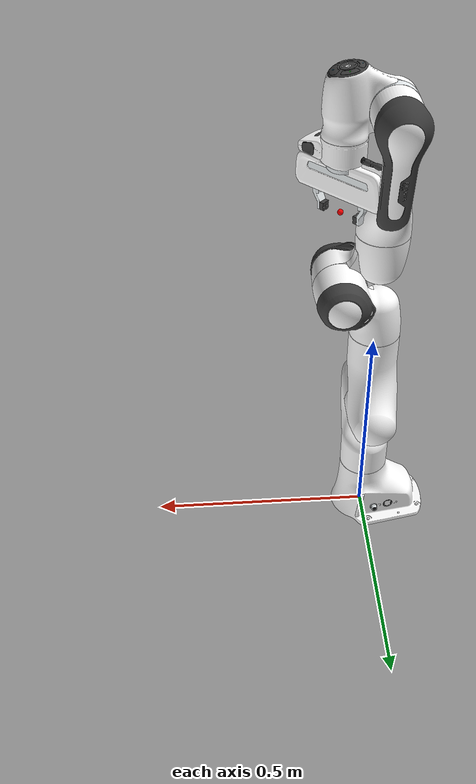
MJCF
<mujoco model="panda hand torque">
  <compiler angle="radian" meshdir="franka_emika_panda/assets" autolimits="true"/>

  <default>
    <default class="panda">
      <material specular="0.5" shininess="0.25"/>
      <joint armature="0.1" damping="1" axis="0 0 1" range="-2.8973 2.8973"/>

      <default class="visual">
        <geom type="mesh" contype="0" conaffinity="0" group="2"/>
      </default>
      <default class="collision">
        <geom type="mesh" group="3"/>
        <default class="fingertip_pad_collision_1">
          <geom type="box" size="0.0085 0.004 0.0085" pos="0 0.0055 0.0445"/>
        </default>
        <default class="fingertip_pad_collision_2">
          <geom type="box" size="0.003 0.002 0.003" pos="0.0055 0.002 0.05"/>
        </default>
        <default class="fingertip_pad_collision_3">
          <geom type="box" size="0.003 0.002 0.003" pos="-0.0055 0.002 0.05"/>
        </default>
        <default class="fingertip_pad_collision_4">
          <geom type="box" size="0.003 0.002 0.0035" pos="0.0055 0.002 0.0395"/>
        </default>
        <default class="fingertip_pad_collision_5">
          <geom type="box" size="0.003 0.002 0.0035" pos="-0.0055 0.002 0.0395"/>
        </default>
      </default>
    </default>
  </default>

  <asset>
    <material class="panda" name="white" rgba="1 1 1 1"/>
    <material class="panda" name="off_white" rgba="0.901961 0.921569 0.929412 1"/>
    <material class="panda" name="black" rgba="0.25 0.25 0.25 1"/>
    <material class="panda" name="green" rgba="0 1 0 1"/>
    <material class="panda" name="light_blue" rgba="0.039216 0.541176 0.780392 1"/>

    <!-- Collision meshes -->
    <mesh name="link0_c" file="link0.stl"/>
    <mesh name="link1_c" file="link1.stl"/>
    <mesh name="link2_c" file="link2.stl"/>
    <mesh name="link3_c" file="link3.stl"/>
    <mesh name="link4_c" file="link4.stl"/>
    <mesh name="link5_c0" file="link5_collision_0.obj"/>
    <mesh name="link5_c1" file="link5_collision_1.obj"/>
    <mesh name="link5_c2" file="link5_collision_2.obj"/>
    <mesh name="link6_c" file="link6.stl"/>
    <mesh name="link7_c" file="link7.stl"/>
    <mesh name="hand_c" file="hand.stl"/>

    <!-- Visual meshes -->
    <mesh file="link0_0.obj"/>
    <mesh file="link0_1.obj"/>
    <mesh file="link0_2.obj"/>
    <mesh file="link0_3.obj"/>
    <mesh file="link0_4.obj"/>
    <mesh file="link0_5.obj"/>
    <mesh file="link0_7.obj"/>
    <mesh file="link0_8.obj"/>
    <mesh file="link0_9.obj"/>
    <mesh file="link0_10.obj"/>
    <mesh file="link0_11.obj"/>
    <mesh file="link1.obj"/>
    <mesh file="link2.obj"/>
    <mesh file="link3_0.obj"/>
    <mesh file="link3_1.obj"/>
    <mesh file="link3_2.obj"/>
    <mesh file="link3_3.obj"/>
    <mesh file="link4_0.obj"/>
    <mesh file="link4_1.obj"/>
    <mesh file="link4_2.obj"/>
    <mesh file="link4_3.obj"/>
    <mesh file="link5_0.obj"/>
    <mesh file="link5_1.obj"/>
    <mesh file="link5_2.obj"/>
    <mesh file="link6_0.obj"/>
    <mesh file="link6_1.obj"/>
    <mesh file="link6_2.obj"/>
    <mesh file="link6_3.obj"/>
    <mesh file="link6_4.obj"/>
    <mesh file="link6_5.obj"/>
    <mesh file="link6_6.obj"/>
    <mesh file="link6_7.obj"/>
    <mesh file="link6_8.obj"/>
    <mesh file="link6_9.obj"/>
    <mesh file="link6_10.obj"/>
    <mesh file="link6_11.obj"/>
    <mesh file="link6_12.obj"/>
    <mesh file="link6_13.obj"/>
    <mesh file="link6_14.obj"/>
    <mesh file="link6_15.obj"/>
    <mesh file="link6_16.obj"/>
    <mesh file="link7_0.obj"/>
    <mesh file="link7_1.obj"/>
    <mesh file="link7_2.obj"/>
    <mesh file="link7_3.obj"/>
    <mesh file="link7_4.obj"/>
    <mesh file="link7_5.obj"/>
    <mesh file="link7_6.obj"/>
    <mesh file="link7_7.obj"/>
    <mesh file="hand_0.obj"/>
    <mesh file="hand_1.obj"/>
    <mesh file="hand_2.obj"/>
    <mesh file="hand_3.obj"/>
    <mesh file="hand_4.obj"/>
    <mesh file="finger_0.obj"/>
    <mesh file="finger_1.obj"/>
  </asset>

  <worldbody>
    <body name="link0" childclass="panda">
      <inertial mass="0.629769" pos="-0.041018 -0.00014 0.049974"
        fullinertia="0.00315 0.00388 0.004285 8.2904e-7 0.00015 8.2299e-6"/>
      <geom mesh="link0_0" material="off_white" class="visual"/>
      <geom mesh="link0_1" material="black" class="visual"/>
      <geom mesh="link0_2" material="off_white" class="visual"/>
      <geom mesh="link0_3" material="black" class="visual"/>
      <geom mesh="link0_4" material="off_white" class="visual"/>
      <geom mesh="link0_5" material="black" class="visual"/>
      <geom mesh="link0_7" material="white" class="visual"/>
      <geom mesh="link0_8" material="white" class="visual"/>
      <geom mesh="link0_9" material="black" class="visual"/>
      <geom mesh="link0_10" material="off_white" class="visual"/>
      <geom mesh="link0_11" material="white" class="visual"/>
      <geom mesh="link0_c" class="collision"/>
      <body name="link1" pos="0 0 0.333">
        <inertial mass="4.970684" pos="0.003875 0.002081 -0.04762"
          fullinertia="0.70337 0.70661 0.0091170 -0.00013900 0.0067720 0.019169"/>
        <joint name="joint1"/>
        <geom material="white" mesh="link1" class="visual"/>
        <geom mesh="link1_c" class="collision"/>
        <body name="link2" quat="1 -1 0 0">
          <inertial mass="0.646926" pos="-0.003141 -0.02872 0.003495"
            fullinertia="0.0079620 2.8110e-2 2.5995e-2 -3.925e-3 1.0254e-2 7.04e-4"/>
          <joint name="joint2" range="-1.7628 1.7628"/>
          <geom material="white" mesh="link2" class="visual"/>
          <geom mesh="link2_c" class="collision"/>
          <body name="link3" pos="0 -0.316 0" quat="1 1 0 0">
            <joint name="joint3"/>
            <inertial mass="3.228604" pos="2.7518e-2 3.9252e-2 -6.6502e-2"
              fullinertia="3.7242e-2 3.6155e-2 1.083e-2 -4.761e-3 -1.1396e-2 -1.2805e-2"/>
            <geom mesh="link3_0" material="white" class="visual"/>
            <geom mesh="link3_1" material="white" class="visual"/>
            <geom mesh="link3_2" material="white" class="visual"/>
            <geom mesh="link3_3" material="black" class="visual"/>
            <geom mesh="link3_c" class="collision"/>
            <body name="link4" pos="0.0825 0 0" quat="1 1 0 0">
              <inertial mass="3.587895" pos="-5.317e-2 1.04419e-1 2.7454e-2"
                fullinertia="2.5853e-2 1.9552e-2 2.8323e-2 7.796e-3 -1.332e-3 8.641e-3"/>
              <joint name="joint4" range="-3.0718 -0.0698"/>
              <geom mesh="link4_0" material="white" class="visual"/>
              <geom mesh="link4_1" material="white" class="visual"/>
              <geom mesh="link4_2" material="black" class="visual"/>
              <geom mesh="link4_3" material="white" class="visual"/>
              <geom mesh="link4_c" class="collision"/>
              <body name="link5" pos="-0.0825 0.384 0" quat="1 -1 0 0">
                <inertial mass="1.225946" pos="-1.1953e-2 4.1065e-2 -3.8437e-2"
                  fullinertia="3.5549e-2 2.9474e-2 8.627e-3 -2.117e-3 -4.037e-3 2.29e-4"/>
                <joint name="joint5"/>
                <geom mesh="link5_0" material="black" class="visual"/>
                <geom mesh="link5_1" material="white" class="visual"/>
                <geom mesh="link5_2" material="white" class="visual"/>
                <geom mesh="link5_c0" class="collision"/>
                <geom mesh="link5_c1" class="collision"/>
                <geom mesh="link5_c2" class="collision"/>
                <body name="link6" quat="1 1 0 0">
                  <inertial mass="1.666555" pos="6.0149e-2 -1.4117e-2 -1.0517e-2"
                    fullinertia="1.964e-3 4.354e-3 5.433e-3 1.09e-4 -1.158e-3 3.41e-4"/>
                  <joint name="joint6" range="-0.0175 3.7525"/>
                  <geom mesh="link6_0" material="off_white" class="visual"/>
                  <geom mesh="link6_1" material="white" class="visual"/>
                  <geom mesh="link6_2" material="black" class="visual"/>
                  <geom mesh="link6_3" material="white" class="visual"/>
                  <geom mesh="link6_4" material="white" class="visual"/>
                  <geom mesh="link6_5" material="white" class="visual"/>
                  <geom mesh="link6_6" material="white" class="visual"/>
                  <geom mesh="link6_7" material="light_blue" class="visual"/>
                  <geom mesh="link6_8" material="light_blue" class="visual"/>
                  <geom mesh="link6_9" material="black" class="visual"/>
                  <geom mesh="link6_10" material="black" class="visual"/>
                  <geom mesh="link6_11" material="white" class="visual"/>
                  <geom mesh="link6_12" material="green" class="visual"/>
                  <geom mesh="link6_13" material="white" class="visual"/>
                  <geom mesh="link6_14" material="black" class="visual"/>
                  <geom mesh="link6_15" material="black" class="visual"/>
                  <geom mesh="link6_16" material="white" class="visual"/>
                  <geom mesh="link6_c" class="collision"/>
                  <body name="link7" pos="0.088 0 0" quat="1 1 0 0">
                    <inertial mass="7.35522e-01" pos="1.0517e-2 -4.252e-3 6.1597e-2"
                      fullinertia="1.2516e-2 1.0027e-2 4.815e-3 -4.28e-4 -1.196e-3 -7.41e-4"/>
                    <joint name="joint7"/>
                    <geom mesh="link7_0" material="white" class="visual"/>
                    <geom mesh="link7_1" material="black" class="visual"/>
                    <geom mesh="link7_2" material="black" class="visual"/>
                    <geom mesh="link7_3" material="black" class="visual"/>
                    <geom mesh="link7_4" material="black" class="visual"/>
                    <geom mesh="link7_5" material="black" class="visual"/>
                    <geom mesh="link7_6" material="black" class="visual"/>
                    <geom mesh="link7_7" material="white" class="visual"/>
                    <geom mesh="link7_c" class="collision"/>
                    <!-- hand：Franka Hand，安装在 link7 法兰面（绕 z 转 −45°）。
                         hand 原点 = link7/hand 交界面 → 腕部 F/T 传感器 ft_site 放在这里；
                         传感器读数包含 hand + 两指（共 0.76 kg）的重力与惯性力，需在控制器侧补偿。 -->
                    <body name="hand" pos="0 0 0.107" quat="0.9238795 0 0 -0.3826834">
                      <inertial mass="0.73" pos="-0.01 0 0.03" diaginertia="0.001 0.0025 0.0017"/>
                      <site name="ft_site" size="0.005" rgba="1 0.5 0 1"/>
                      <!-- TCP：两指之间、法兰前方 0.1034 m（Franka 的 TCP 约定）。
                           z = 接近方向，y = 手指开合方向，x = 垂直于手指平面。 -->
                      <site name="ee_site" pos="0 0 0.1034" size="0.006" rgba="1 0 0 1"/>
                      <geom mesh="hand_0" material="off_white" class="visual"/>
                      <geom mesh="hand_1" material="black" class="visual"/>
                      <geom mesh="hand_2" material="black" class="visual"/>
                      <geom mesh="hand_3" material="white" class="visual"/>
                      <geom mesh="hand_4" material="off_white" class="visual"/>
                      <geom mesh="hand_c" class="collision"/>
                      <body name="left_finger" pos="0 0.036 0.0584">
                        <inertial mass="0.015" pos="0 0 0" diaginertia="2.375e-6 2.375e-6 7.5e-7"/>
                        <geom mesh="finger_0" material="off_white" class="visual"/>
                        <geom mesh="finger_1" material="black" class="visual"/>
                        <geom mesh="finger_0" class="collision"/>
                        <geom class="fingertip_pad_collision_1"/>
                        <geom class="fingertip_pad_collision_2"/>
                        <geom class="fingertip_pad_collision_3"/>
                        <geom class="fingertip_pad_collision_4"/>
                        <geom class="fingertip_pad_collision_5"/>
                      </body>
                      <body name="right_finger" pos="0 -0.036 0.0584" quat="0 0 0 1">
                        <inertial mass="0.015" pos="0 0 0" diaginertia="2.375e-6 2.375e-6 7.5e-7"/>
                        <geom mesh="finger_0" material="off_white" class="visual"/>
                        <geom mesh="finger_1" material="black" class="visual"/>
                        <geom mesh="finger_0" class="collision"/>
                        <geom class="fingertip_pad_collision_1"/>
                        <geom class="fingertip_pad_collision_2"/>
                        <geom class="fingertip_pad_collision_3"/>
                        <geom class="fingertip_pad_collision_4"/>
                        <geom class="fingertip_pad_collision_5"/>
                      </body>
                    </body>
                  </body>
                </body>
              </body>
            </body>
          </body>
        </body>
      </body>
    </body>
  </worldbody>

  <!-- 力矩电机：ctrl = 关节力矩 [N·m]，ctrlrange = Panda 额定力矩上限 -->
  <actuator>
    <motor name="actuator1" joint="joint1" ctrlrange="-87 87"/>
    <motor name="actuator2" joint="joint2" ctrlrange="-87 87"/>
    <motor name="actuator3" joint="joint3" ctrlrange="-87 87"/>
    <motor name="actuator4" joint="joint4" ctrlrange="-87 87"/>
    <motor name="actuator5" joint="joint5" ctrlrange="-12 12"/>
    <motor name="actuator6" joint="joint6" ctrlrange="-12 12"/>
    <motor name="actuator7" joint="joint7" ctrlrange="-12 12"/>
  </actuator>

  <sensor>
    <force name="ft_force" site="ft_site"/>
    <torque name="ft_torque" site="ft_site"/>
  </sensor>

  <contact>
    <exclude body1="link0" body2="link1"/>
  </contact>
</mujoco>
